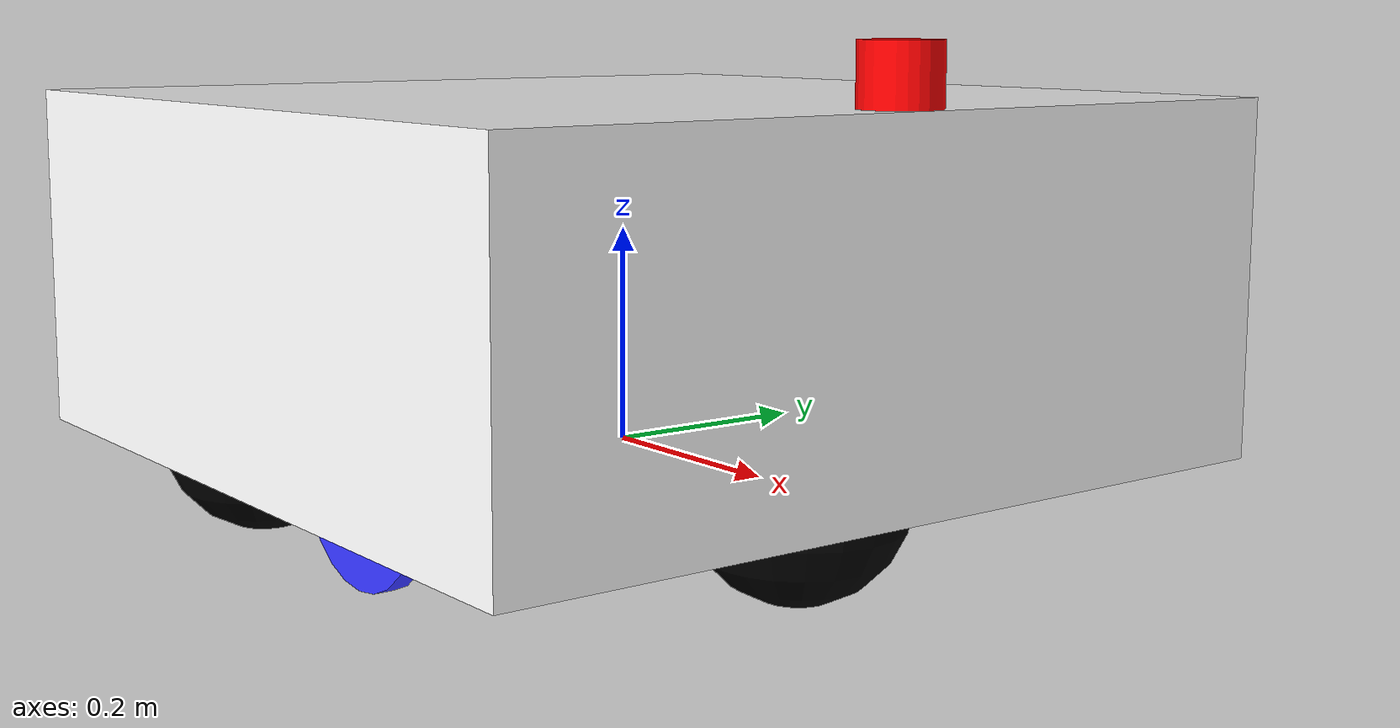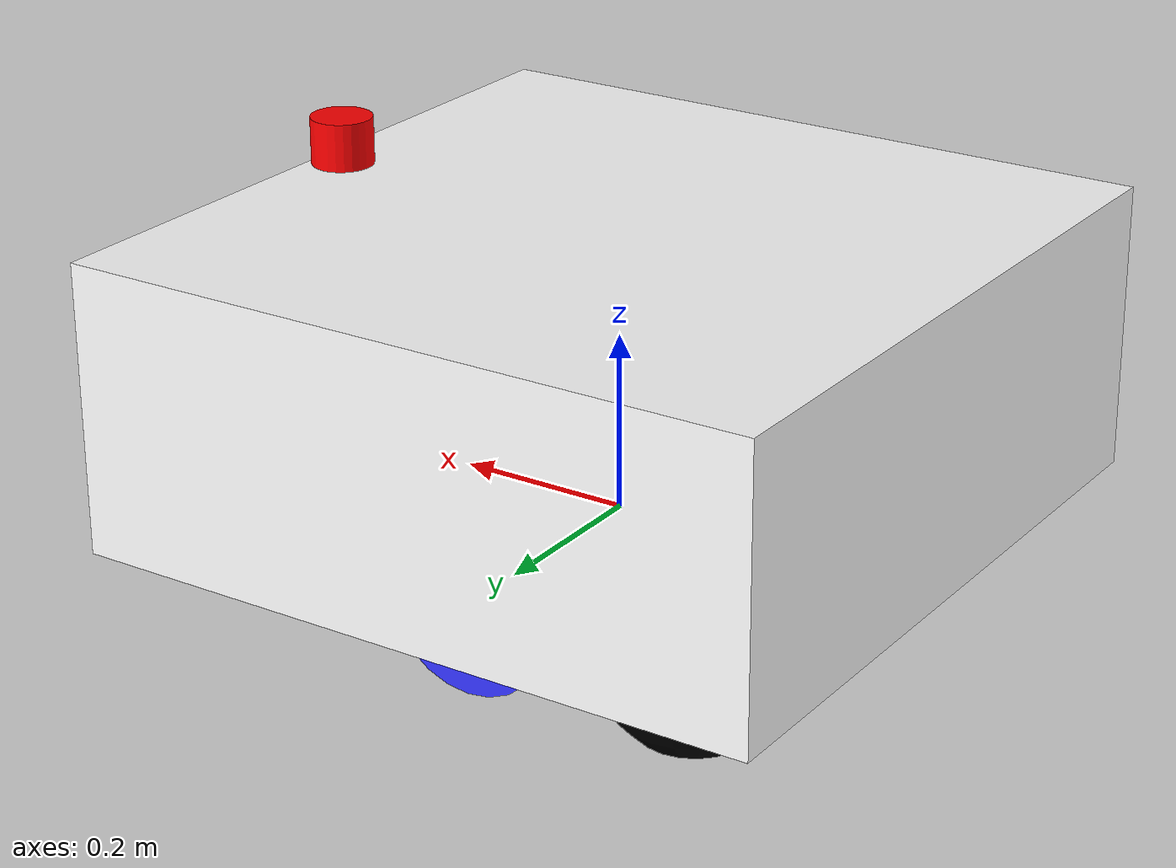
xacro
<?xml version="1.0"?>
<robot xmlns:xacro="http://www.ros.org/wiki/xacro"  name="robot">

    <xacro:arg name="use_ros2_control" default='true'/>
    <xacro:arg name="sim_mode" default='false'/>

    <xacro:include filename='constants.xacro'/>
    <xacro:include filename="robot_core.xacro"/>
    <xacro:include filename="lidar.xacro"/>

    <xacro:if value="$(arg use_ros2_control)">
        <xacro:include filename="ros2_control.xacro"/>
    </xacro:if>
    <xacro:unless value="$(arg use_ros2_control)">
        <xacro:include filename="gazebo_control.xacro"/>
    </xacro:unless>

</robot>

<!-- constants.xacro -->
<robot xmlns:xacro="http://www.ros.org/wiki/xacro">

    <!-- Constants -->

    <!-- REAL ROBOT -->
    <xacro:property name='chss_len' value='0.8'/>
    <xacro:property name='chss_wid' value='0.8'/>
    <xacro:property name='chss_h' value='0.325'/>
    <xacro:property name='chss_mass' value='5'/>

    <xacro:property name='wheel_to_origin' value='0.275'/>
    <xacro:property name='wheel_rad' value='0.1'/>
    <xacro:property name='wheel_wid' value='0.02'/>
    <xacro:property name='wheel_mass' value='0.25'/>

    <xacro:property name='caster_rad' value='0.1'/>
    <xacro:property name='caster_mass' value='0.2'/>
    <xacro:property name='front_caster_to_origin' value='0.25'/>
    <xacro:property name='back_caster_to_x' value='0.25'/>
    <xacro:property name='back_caster_to_y' value='0.25'/>

    <!-- MEJD'S ROBOT -->

    <!-- lidar -->
    <xacro:property name='lidar_rad' value='0.035'/>
    <xacro:property name='lidar_h' value='0.054'/>
    <xacro:property name='lidar_h_to_cam' value='0.044'/>
    <!-- controller -->
    <xacro:property name='pid_loop_rate' value='30'/>
    <xacro:property name='enc_count_per_rev' value='300'/>

    <!-- Creating colors -->
    <material name="white">
        <color rgba="1 1 1 1"/>
    </material>
    <material name="orange">
        <color rgba="1 0.3 0.1 1"/>
    </material>
    <material name="blue">
        <color rgba="0.2 0.2 1 1"/>
    </material>
    <material name="black">
        <color rgba="0 0 0 1"/>
    </material>
    <material name="red">
        <color rgba="1 0 0 1"/>
    </material>
</robot>

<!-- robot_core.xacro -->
<robot xmlns:xacro="http://www.ros.org/wiki/xacro">

    <xacro:include filename='inertial_macros.xacro'/>

    <!-- Base Link -->
    <link name="base_link">
    </link>

    <!-- Chassis -->
    <joint name="base_footprint_joint" type="fixed">
        <parent link="base_link"/>
        <child link="base_footprint"/>
        <origin xyz="0 0 0" rpy="0 0 0"/>
    </joint>

    <link name="base_footprint">
    </link>

    <!-- Chassis -->
    <joint name="chassis_joint" type="fixed">
        <parent link="base_link"/>
        <child link="chassis"/>
        <origin xyz="0 0 0"/>
    </joint>

    <link name="chassis">
        <visual>
            <origin xyz="0 0 ${chss_h/2}" rpy="0 0 0"/>
            <geometry>
                <box size="${chss_len} ${chss_wid} ${chss_h}"/>
            </geometry>
            <material name="white"/>
        </visual>
        <collision>
            <origin xyz="0 0 ${chss_h/2}" rpy="0 0 0"/>
            <geometry>
                <box size="${chss_len} ${chss_wid} ${chss_h}"/>
            </geometry>
        </collision>
        <xacro:inertial_box mass='${chss_mass}' x='${chss_len}' y='${chss_wid}' z='${chss_h}'>
            <origin xyz="0 0 ${chss_h/2}" rpy="0 0 0"/>
        </xacro:inertial_box>
    </link>

    <!-- Right wheel -->
    <joint name='right_wheel_joint' type='continuous'>
        <parent link='base_link'/>
        <child link='right_wheel'/>
        <origin xyz='0 -${wheel_to_origin} 0' rpy='${pi/2} 0 0'/>
        <axis xyz='0 0 -1'/>
    </joint>

    <link name='right_wheel'>
        <visual>
            <geometry>
                <cylinder length="${wheel_wid}" radius="${wheel_rad}"/>
            </geometry>
            <material name='blue'/>
        </visual>
        <collision>
            <geometry>
                <sphere radius="${wheel_rad}" />
            </geometry>
        </collision>
        <xacro:inertial_cylinder mass='${wheel_mass}' length="${wheel_wid}" radius="${wheel_rad}">
            <origin xyz='0 0 0' rpy='0 0 0'/>
        </xacro:inertial_cylinder>
    </link>
    <gazebo reference='right_wheel'>
        <material>Gazebo/Blue</material>
    </gazebo>

    <!-- Left wheel -->
    <joint name='left_wheel_joint' type='continuous'>
        <parent link='base_link'/>
        <child link='left_wheel'/>
        <origin xyz='0 ${wheel_to_origin} 0' rpy='${-pi/2} 0 0'/>
        <axis xyz='0 0 1'/>
    </joint>

    <link name='left_wheel'>
        <visual>
            <geometry>
                <cylinder length="${wheel_wid}" radius="${wheel_rad}"/>
            </geometry>
            <material name='blue'/>
        </visual>
        <collision>
            <geometry>
                <sphere radius="${wheel_rad}" />
            </geometry>
        </collision>
        <xacro:inertial_cylinder mass='${wheel_mass}' length="${wheel_wid}" radius="${wheel_rad}">
            <origin xyz='0 0 0' rpy='0 0 0'/>
        </xacro:inertial_cylinder>
    </link>
    <gazebo reference='left_wheel'>
        <material>Gazebo/Blue</material>
    </gazebo>

    <!-- Front Caster wheel -->
    <joint name='front_caster_joint' type='fixed'>
        <parent link='chassis'/>
        <child link='front_caster'/>
        <origin xyz='${front_caster_to_origin} 0 0'/>
    </joint>
    <link name='front_caster'>
        <visual>
            <geometry>
                <sphere radius='${caster_rad}'/>
            </geometry>
            <material name='black'/>
        </visual>
        <collision>
            <geometry>
                <sphere radius='${caster_rad}'/>
            </geometry>
        </collision>
        <xacro:inertial_sphere mass='${caster_mass}' radius='${caster_rad}'>
            <origin xyz='0 0 0'/>
        </xacro:inertial_sphere>
    </link>

    <gazebo reference="front_caster">
        <material>Gazebo/Black</material>
        <mu1 value="0.001"/>
        <mu2 value="0.001"/>
    </gazebo>

    <!-- right caster -->
    <joint name='right_caster_joint' type='fixed'>
        <parent link='chassis'/>
        <child link='right_caster'/>
        <origin xyz='${-back_caster_to_x} ${-back_caster_to_y} 0'/>
    </joint>
    <link name='right_caster'>
        <visual>
            <geometry>
                <sphere radius='${caster_rad}'/>
            </geometry>
            <material name='black'/>
        </visual>
        <collision>
            <geometry>
                <sphere radius='${caster_rad}'/>
            </geometry>
        </collision>
        <xacro:inertial_sphere mass='${caster_mass}' radius='${caster_rad}'>
            <origin xyz='0 0 0'/>
        </xacro:inertial_sphere>
    </link>

    <gazebo reference="right_caster">
        <material>Gazebo/Black</material>
        <mu1 value="0.001"/>
        <mu2 value="0.001"/>
    </gazebo>

    <!-- left caster -->
    <joint name='left_caster_joint' type='fixed'>
        <parent link='chassis'/>
        <child link='left_caster'/>
        <origin xyz='${-back_caster_to_x} ${back_caster_to_y} 0'/>
    </joint>
    <link name='left_caster'>
        <visual>
            <geometry>
                <sphere radius='${caster_rad}'/>
            </geometry>
            <material name='black'/>
        </visual>
        <collision>
            <geometry>
                <sphere radius='${caster_rad}'/>
            </geometry>
        </collision>
        <xacro:inertial_sphere mass='${caster_mass}' radius='${caster_rad}'>
            <origin xyz='0 0 0'/>
        </xacro:inertial_sphere>
    </link>

    <gazebo reference="left_caster">
        <material>Gazebo/Black</material>
        <mu1 value="0.001"/>
        <mu2 value="0.001"/>
    </gazebo>

</robot>

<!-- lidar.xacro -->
<robot xmlns:xacro="http://www.ros.org/wiki/xacro">

    <joint name="lidar_joint" type="fixed">
        <parent link="chassis"/>
        <child link="laser_frame"/>
        <origin xyz="${chss_len/2 - lidar_rad} 0 ${chss_h + lidar_h/2}" rpy="0 0 ${pi/2 * 0.95}"/>
    </joint>

    <link name="laser_frame">
        <visual>
            <geometry>
                <cylinder length="${lidar_h}" radius="${lidar_rad}"/>
            </geometry>
            <material name='red'/>
        </visual>
        <collision>
            <geometry>
                <cylinder length="${lidar_h}" radius="${lidar_rad}"/>
            </geometry>
        </collision>
        <xacro:inertial_cylinder mass='${wheel_mass}' length="${wheel_wid}" radius="${wheel_rad}">
            <origin xyz='0 0 0' rpy='0 0 0'/>
        </xacro:inertial_cylinder>
    </link>

    <gazebo reference='laser_frame'>
        <material>Gazebo/Red</material>
        <sensor name="laser" type="ray">
            <pose> 0 0 ${lidar_h_to_cam} 0 0 0 </pose>
            <visualize>false</visualize>
            <update_rate>10</update_rate>
            <ray>
                <scan>
                    <horizontal>
                        <samples>360</samples>
                        <resolution>1</resolution>
                        <min_angle>-3.14</min_angle>
                        <max_angle>3.14</max_angle>
                    </horizontal>
                </scan>
                <range>
                    <min>0.15</min>
                    <max>12</max>
                    <resolution>1</resolution>
                </range>
            </ray>
            <plugin name="laser_controller" filename="libgazebo_ros_ray_sensor.so">
                <ros>
                    <argument>~/out:=scan</argument>
                </ros>
                <frame_name>laser_frame</frame_name>
                <output_type>sensor_msgs/LaserScan</output_type>
            </plugin>
        </sensor>
    </gazebo>

</robot>
